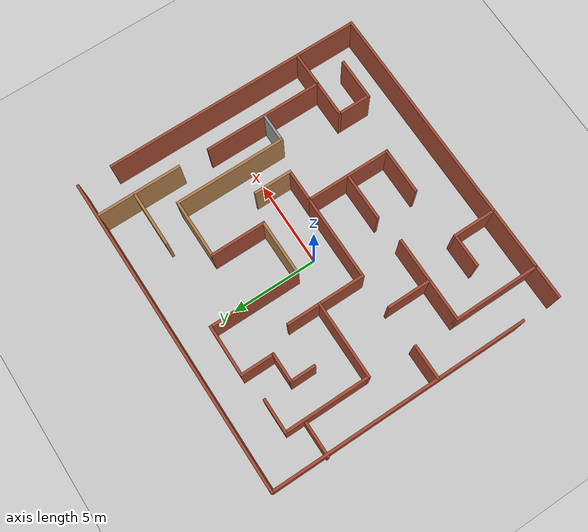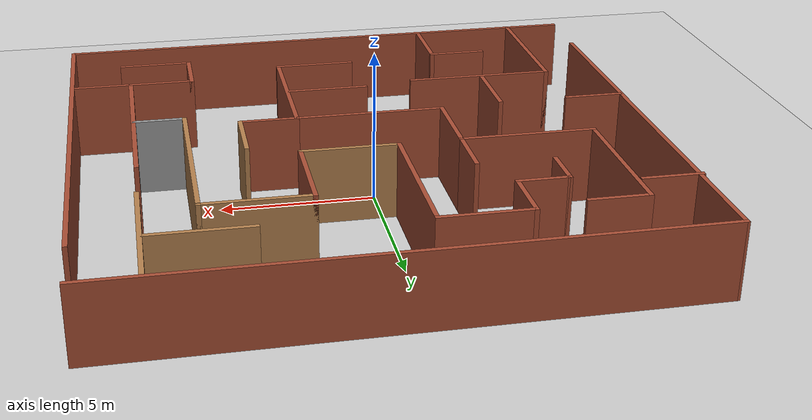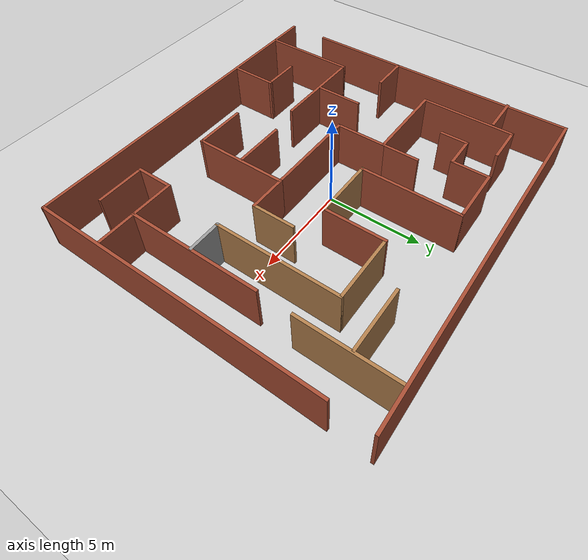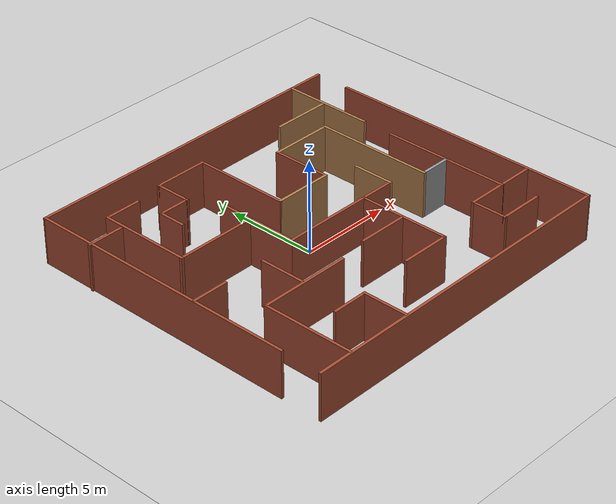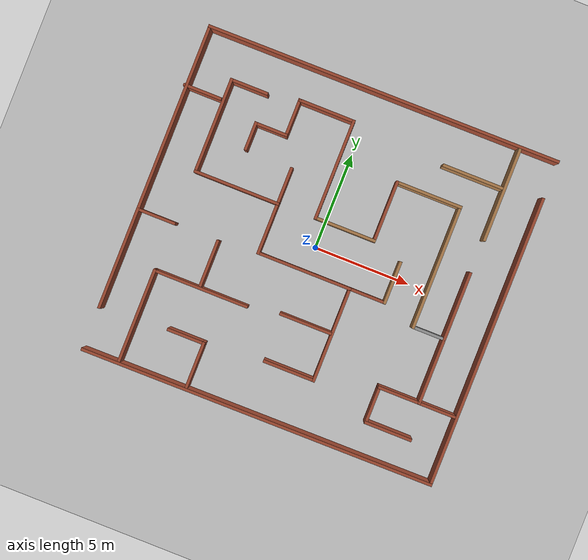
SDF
<sdf version="1.7">
 <world name="default">
  <light name="sun" type="directional">
   <pose>0 0 10 0 -0 0</pose>
   <diffuse>0.8 0.8 0.8 1</diffuse>
   <specular>0.2 0.2 0.2 1</specular>
   <attenuation>
    <range>1000</range>
    <constant>0.9</constant>
    <linear>0.01</linear>
    <quadratic>0.001</quadratic>
   </attenuation>
   <direction>-0.5 0.1 -0.9</direction>
   <spot><inner_angle>0</inner_angle><outer_angle>0</outer_angle><falloff>0</falloff></spot>
  </light>
  <model name="ground_plane">
   <static>1</static>
   <link name="link">
    <collision name="collision">
     <geometry><plane><normal>0 0 1</normal><size>100 100</size></plane></geometry>
     <surface><friction><ode><mu>100</mu><mu2>50</mu2></ode></friction></surface>
    </collision>
    <visual name="visual">
     <cast_shadows>0</cast_shadows>
     <geometry><plane><normal>0 0 1</normal><size>100 100</size></plane></geometry>
     <material>
      <script><uri>file://media/materials/scripts/gazebo.material</uri><name>Gazebo/Grey</name></script>
     </material>
    </visual>
   </link>
  </model>
  <gravity>0 0 -9.8</gravity>
  <magnetic_field>6e-06 2.3e-05 -4.2e-05</magnetic_field>
  <atmosphere type="adiabatic"/>
  <physics type="ode">
   <max_step_size>0.001</max_step_size>
   <real_time_factor>1</real_time_factor>
   <real_time_update_rate>1000</real_time_update_rate>
  </physics>
  <scene><ambient>0.4 0.4 0.4 1</ambient><background>0.7 0.7 0.7 1</background><shadows>1</shadows></scene>
  <audio><device>default</device></audio>
  <spherical_coordinates>
   <surface_model>EARTH_WGS84</surface_model>
   <latitude_deg>0</latitude_deg>
   <longitude_deg>0</longitude_deg>
   <elevation>0</elevation>
   <heading_deg>0</heading_deg>
  </spherical_coordinates>
  <model name="Maze_1">
   <pose>0.318271 -0.269888 0 0 -0 0</pose>
   <link name="Wall_101">
    <collision name="Wall_101_Collision">
     <geometry><box><size>5.25 0.15 2.5</size></box></geometry>
     <pose>0 0 1.25 0 -0 0</pose>
    </collision>
    <visual name="Wall_101_Visual">
     <pose>0 0 1.25 0 -0 0</pose>
     <geometry><box><size>5.25 0.15 2.5</size></box></geometry>
     <material>
      <script><uri>file://media/materials/scripts/gazebo.material</uri><name>Gazebo/Bricks</name></script>
      <ambient>1 1 1 1</ambient>
     </material>
     <meta><layer>0</layer></meta>
    </visual>
    <pose>-0.848398 4.19928 0 0 -0 -1.5708</pose>
   </link>
   <link name="Wall_102">
    <collision name="Wall_102_Collision">
     <geometry><box><size>3.25 0.15 2.5</size></box></geometry>
     <pose>0 0 1.25 0 -0 0</pose>
    </collision>
    <visual name="Wall_102_Visual">
     <pose>0 0 1.25 0 -0 0</pose>
     <geometry><box><size>3.25 0.15 2.5</size></box></geometry>
     <material>
      <script><uri>file://media/materials/scripts/gazebo.material</uri><name>Gazebo/Wood</name></script>
      <ambient>1 1 1 1</ambient>
     </material>
     <meta><layer>0</layer></meta>
    </visual>
    <pose>0.701602 1.64928 0 0 -0 0</pose>
   </link>
   <link name="Wall_103">
    <collision name="Wall_103_Collision">
     <geometry><box><size>3.25 0.15 2.5</size></box></geometry>
     <pose>0 0 1.25 0 -0 0</pose>
    </collision>
    <visual name="Wall_103_Visual">
     <pose>0 0 1.25 0 -0 0</pose>
     <geometry><box><size>3.25 0.15 2.5</size></box></geometry>
     <material>
      <script><uri>file://media/materials/scripts/gazebo.material</uri><name>Gazebo/Bricks</name></script>
      <ambient>1 1 1 1</ambient>
     </material>
     <meta><layer>0</layer></meta>
    </visual>
    <pose>2.2516 3.19928 0 0 -0 1.5708</pose>
   </link>
   <link name="Wall_104">
    <collision name="Wall_104_Collision">
     <geometry><box><size>3.5 0.15 2.5</size></box></geometry>
     <pose>0 0 1.25 0 -0 0</pose>
    </collision>
    <visual name="Wall_104_Visual">
     <pose>0 0 1.25 0 -0 0</pose>
     <geometry><box><size>3.5 0.15 2.5</size></box></geometry>
     <material>
      <script><uri>file://media/materials/scripts/gazebo.material</uri><name>Gazebo/Wood</name></script>
      <ambient>1 1 1 1</ambient>
     </material>
     <meta><layer>0</layer></meta>
    </visual>
    <pose>3.9266 4.74928 0 0 -0 0</pose>
   </link>
   <link name="Wall_105">
    <collision name="Wall_105_Collision">
     <geometry><box><size>6.5 0.15 2.5</size></box></geometry>
     <pose>0 0 1.25 0 -0 0</pose>
    </collision>
    <visual name="Wall_105_Visual">
     <pose>0 0 1.25 0 -0 0</pose>
     <geometry><box><size>6.5 0.15 2.5</size></box></geometry>
     <material>
      <script><uri>file://media/materials/scripts/gazebo.material</uri><name>Gazebo/Wood</name></script>
      <ambient>1 1 1 1</ambient>
     </material>
     <meta><layer>0</layer></meta>
    </visual>
    <pose>5.6016 1.57428 0 0 -0 -1.5708</pose>
   </link>
   <link name="Wall_106">
    <collision name="Wall_106_Collision">
     <geometry><box><size>1.75 0.15 2.5</size></box></geometry>
     <pose>0 0 1.25 0 -0 0</pose>
    </collision>
    <visual name="Wall_106_Visual">
     <pose>0 0 1.25 0 -0 0</pose>
     <geometry><box><size>1.75 0.15 2.5</size></box></geometry>
     <material>
      <script><uri>file://media/materials/scripts/gazebo.material</uri><name>Gazebo/Grey</name></script>
      <ambient>1 1 1 1</ambient>
     </material>
     <meta><layer>0</layer></meta>
    </visual>
    <pose>6.4016 -1.60072 0 0 -0 0</pose>
   </link>
   <link name="Wall_108">
    <collision name="Wall_108_Collision">
     <geometry><box><size>2 0.15 2.5</size></box></geometry>
     <pose>0 0 1.25 0 -0 0</pose>
    </collision>
    <visual name="Wall_108_Visual">
     <pose>0 0 1.25 0 -0 0</pose>
     <geometry><box><size>2 0.15 2.5</size></box></geometry>
     <material>
      <script><uri>file://media/materials/scripts/gazebo.material</uri><name>Gazebo/Bricks</name></script>
      <ambient>1 1 1 1</ambient>
     </material>
     <meta><layer>0</layer></meta>
    </visual>
    <pose>2.92695 -0.995875 0 0 -0 0</pose>
   </link>
   <link name="Wall_109">
    <collision name="Wall_109_Collision">
     <geometry><box><size>2.25 0.15 2.5</size></box></geometry>
     <pose>0 0 1.25 0 -0 0</pose>
    </collision>
    <visual name="Wall_109_Visual">
     <pose>0 0 1.25 0 -0 0</pose>
     <geometry><box><size>2.25 0.15 2.5</size></box></geometry>
     <material>
      <script><uri>file://media/materials/scripts/gazebo.material</uri><name>Gazebo/Wood</name></script>
      <ambient>1 1 1 1</ambient>
     </material>
     <meta><layer>0</layer></meta>
    </visual>
    <pose>3.85195 0.054125 0 0 -0 1.5708</pose>
   </link>
   <link name="Wall_111">
    <collision name="Wall_111_Collision">
     <geometry><box><size>2.75 0.15 2.5</size></box></geometry>
     <pose>0 0 1.25 0 -0 0</pose>
    </collision>
    <visual name="Wall_111_Visual">
     <pose>0 0 1.25 0 -0 0</pose>
     <geometry><box><size>2.75 0.15 2.5</size></box></geometry>
     <material>
      <script><uri>file://media/materials/scripts/gazebo.material</uri><name>Gazebo/Bricks</name></script>
      <ambient>1 1 1 1</ambient>
     </material>
     <meta><layer>0</layer></meta>
    </visual>
    <pose>0.597626 -3.38697 0 0 -0 3.14159</pose>
   </link>
   <link name="Wall_14">
    <collision name="Wall_14_Collision">
     <geometry><box><size>18.5406 0.15 2.5</size></box></geometry>
     <pose>0 0 1.25 0 -0 0</pose>
    </collision>
    <visual name="Wall_14_Visual">
     <pose>0 0 1.25 0 -0 0</pose>
     <geometry><box><size>18.5406 0.15 2.5</size></box></geometry>
     <material>
      <script><uri>file://media/materials/scripts/gazebo.material</uri><name>Gazebo/Bricks</name></script>
      <ambient>1 1 1 1</ambient>
     </material>
     <meta><layer>0</layer></meta>
    </visual>
    <pose>0.042858 -8.55 0 0 -0 0.0044</pose>
   </link>
   <link name="Wall_16">
    <collision name="Wall_16_Collision">
     <geometry><box><size>18.5406 0.15 2.5</size></box></geometry>
     <pose>0 0 1.25 0 -0 0</pose>
    </collision>
    <visual name="Wall_16_Visual">
     <pose>0 0 1.25 0 -0 0</pose>
     <geometry><box><size>18.5406 0.15 2.5</size></box></geometry>
     <material>
      <script><uri>file://media/materials/scripts/gazebo.material</uri><name>Gazebo/Bricks</name></script>
      <ambient>1 1 1 1</ambient>
     </material>
     <meta><layer>0</layer></meta>
    </visual>
    <pose>0.042858 8.55 0 0 -0 -3.13719</pose>
   </link>
   <link name="Wall_31">
    <collision name="Wall_31_Collision">
     <geometry><box><size>15 0.15 2.5</size></box></geometry>
     <pose>0 0 1.25 0 -0 0</pose>
    </collision>
    <visual name="Wall_31_Visual">
     <pose>0 0 1.25 0 -0 0</pose>
     <geometry><box><size>15 0.15 2.5</size></box></geometry>
     <material>
      <script><uri>file://media/materials/scripts/gazebo.material</uri><name>Gazebo/Bricks</name></script>
      <ambient>1 1 1 1</ambient>
     </material>
     <meta><layer>0</layer></meta>
    </visual>
    <pose>-9.15237 1.08455 0 0 -0 -1.5708</pose>
   </link>
   <link name="Wall_33">
    <collision name="Wall_33_Collision">
     <geometry><box><size>15.25 0.15 2.5</size></box></geometry>
     <pose>0 0 1.25 0 -0 0</pose>
    </collision>
    <visual name="Wall_33_Visual">
     <pose>0 0 1.25 0 -0 0</pose>
     <geometry><box><size>15.25 0.15 2.5</size></box></geometry>
     <material>
      <script><uri>file://media/materials/scripts/gazebo.material</uri><name>Gazebo/Bricks</name></script>
      <ambient>1 1 1 1</ambient>
     </material>
     <meta><layer>0</layer></meta>
    </visual>
    <pose>9.23809 -0.959544 0 0 -0 1.5708</pose>
   </link>
   <link name="Wall_37">
    <collision name="Wall_37_Collision">
     <geometry><box><size>5 0.15 2.5</size></box></geometry>
     <pose>0 0 1.25 0 -0 0</pose>
    </collision>
    <visual name="Wall_37_Visual">
     <pose>0 0 1.25 0 -0 0</pose>
     <geometry><box><size>5 0.15 2.5</size></box></geometry>
     <material>
      <script><uri>file://media/materials/scripts/gazebo.material</uri><name>Gazebo/Wood</name></script>
      <ambient>1 1 1 1</ambient>
     </material>
     <meta><layer>0</layer></meta>
    </visual>
    <pose>7.28523 6.12455 0 0 -0 -1.5708</pose>
   </link>
   <link name="Wall_40">
    <collision name="Wall_40_Collision">
     <geometry><box><size>7 0.15 2.5</size></box></geometry>
     <pose>0 0 1.25 0 -0 0</pose>
    </collision>
    <visual name="Wall_40_Visual">
     <pose>0 0 1.25 0 -0 0</pose>
     <geometry><box><size>7 0.15 2.5</size></box></geometry>
     <material>
      <script><uri>file://media/materials/scripts/gazebo.material</uri><name>Gazebo/Bricks</name></script>
      <ambient>1 1 1 1</ambient>
     </material>
     <meta><layer>0</layer></meta>
    </visual>
    <pose>7.24478 -1.55062 0 0 -0 -1.5708</pose>
   </link>
   <link name="Wall_41">
    <collision name="Wall_41_Collision">
     <geometry><box><size>2 0.15 2.5</size></box></geometry>
     <pose>0 0 1.25 0 -0 0</pose>
    </collision>
    <visual name="Wall_41_Visual">
     <pose>0 0 1.25 0 -0 0</pose>
     <geometry><box><size>2 0.15 2.5</size></box></geometry>
     <material>
      <script><uri>file://media/materials/scripts/gazebo.material</uri><name>Gazebo/Bricks</name></script>
      <ambient>1 1 1 1</ambient>
     </material>
     <meta><layer>0</layer></meta>
    </visual>
    <pose>8.16978 -4.97562 0 0 -0 0</pose>
   </link>
   <link name="Wall_43">
    <collision name="Wall_43_Collision">
     <geometry><box><size>2.25 0.15 2.5</size></box></geometry>
     <pose>0 0 1.25 0 -0 0</pose>
    </collision>
    <visual name="Wall_43_Visual">
     <pose>0 0 1.25 0 -0 0</pose>
     <geometry><box><size>2.25 0.15 2.5</size></box></geometry>
     <material>
      <script><uri>file://media/materials/scripts/gazebo.material</uri><name>Gazebo/Bricks</name></script>
      <ambient>1 1 1 1</ambient>
     </material>
     <meta><layer>0</layer></meta>
    </visual>
    <pose>6.19478 -4.97562 0 0 -0 3.14159</pose>
   </link>
   <link name="Wall_44">
    <collision name="Wall_44_Collision">
     <geometry><box><size>2 0.15 2.5</size></box></geometry>
     <pose>0 0 1.25 0 -0 0</pose>
    </collision>
    <visual name="Wall_44_Visual">
     <pose>0 0 1.25 0 -0 0</pose>
     <geometry><box><size>2 0.15 2.5</size></box></geometry>
     <material>
      <script><uri>file://media/materials/scripts/gazebo.material</uri><name>Gazebo/Bricks</name></script>
      <ambient>1 1 1 1</ambient>
     </material>
     <meta><layer>0</layer></meta>
    </visual>
    <pose>5.14478 -5.90062 0 0 -0 -1.5708</pose>
   </link>
   <link name="Wall_45">
    <collision name="Wall_45_Collision">
     <geometry><box><size>2.5 0.15 2.5</size></box></geometry>
     <pose>0 0 1.25 0 -0 0</pose>
    </collision>
    <visual name="Wall_45_Visual">
     <pose>0 0 1.25 0 -0 0</pose>
     <geometry><box><size>2.5 0.15 2.5</size></box></geometry>
     <material>
      <script><uri>file://media/materials/scripts/gazebo.material</uri><name>Gazebo/Bricks</name></script>
      <ambient>1 1 1 1</ambient>
     </material>
     <meta><layer>0</layer></meta>
    </visual>
    <pose>6.31978 -6.82562 0 0 -0 0</pose>
   </link>
   <link name="Wall_47">
    <collision name="Wall_47_Collision">
     <geometry><box><size>3.25 0.15 2.5</size></box></geometry>
     <pose>0 0 1.25 0 -0 0</pose>
    </collision>
    <visual name="Wall_47_Visual">
     <pose>0 0 1.25 0 -0 0</pose>
     <geometry><box><size>3.25 0.15 2.5</size></box></geometry>
     <material>
      <script><uri>file://media/materials/scripts/gazebo.material</uri><name>Gazebo/Wood</name></script>
      <ambient>1 1 1 1</ambient>
     </material>
     <meta><layer>0</layer></meta>
    </visual>
    <pose>5.65432 6.36494 0 0 -0 3.14159</pose>
   </link>
   <link name="Wall_54">
    <collision name="Wall_54_Collision">
     <geometry><box><size>5 0.15 2.5</size></box></geometry>
     <pose>0 0 1.25 0 -0 0</pose>
    </collision>
    <visual name="Wall_54_Visual">
     <pose>0 0 1.25 0 -0 0</pose>
     <geometry><box><size>5 0.15 2.5</size></box></geometry>
     <material>
      <script><uri>file://media/materials/scripts/gazebo.material</uri><name>Gazebo/Bricks</name></script>
      <ambient>1 1 1 1</ambient>
     </material>
     <meta><layer>0</layer></meta>
    </visual>
    <pose>-7.27877 -6.09771 0 0 -0 1.5708</pose>
   </link>
   <link name="Wall_56">
    <collision name="Wall_56_Collision">
     <geometry><box><size>5 0.15 2.5</size></box></geometry>
     <pose>0 0 1.25 0 -0 0</pose>
    </collision>
    <visual name="Wall_56_Visual">
     <pose>0 0 1.25 0 -0 0</pose>
     <geometry><box><size>5 0.15 2.5</size></box></geometry>
     <material>
      <script><uri>file://media/materials/scripts/gazebo.material</uri><name>Gazebo/Bricks</name></script>
      <ambient>1 1 1 1</ambient>
     </material>
     <meta><layer>0</layer></meta>
    </visual>
    <pose>-4.85377 -3.67271 0 0 -0 0</pose>
   </link>
   <link name="Wall_63">
    <collision name="Wall_63_Collision">
     <geometry><box><size>2.5 0.15 2.5</size></box></geometry>
     <pose>0 0 1.25 0 -0 0</pose>
    </collision>
    <visual name="Wall_63_Visual">
     <pose>0 0 1.25 0 -0 0</pose>
     <geometry><box><size>2.5 0.15 2.5</size></box></geometry>
     <material>
      <script><uri>file://media/materials/scripts/gazebo.material</uri><name>Gazebo/Bricks</name></script>
      <ambient>1 1 1 1</ambient>
     </material>
     <meta><layer>0</layer></meta>
    </visual>
    <pose>-3.71535 -7.30685 0 0 -0 1.5708</pose>
   </link>
   <link name="Wall_64">
    <collision name="Wall_64_Collision">
     <geometry><box><size>2 0.15 2.5</size></box></geometry>
     <pose>0 0 1.25 0 -0 0</pose>
    </collision>
    <visual name="Wall_64_Visual">
     <pose>0 0 1.25 0 -0 0</pose>
     <geometry><box><size>2 0.15 2.5</size></box></geometry>
     <material>
      <script><uri>file://media/materials/scripts/gazebo.material</uri><name>Gazebo/Bricks</name></script>
      <ambient>1 1 1 1</ambient>
     </material>
     <meta><layer>0</layer></meta>
    </visual>
    <pose>-4.64035 -6.13185 0 0 -0 3.14159</pose>
   </link>
   <link name="Wall_66">
    <collision name="Wall_66_Collision">
     <geometry><box><size>2 0.15 2.5</size></box></geometry>
     <pose>0 0 1.25 0 -0 0</pose>
    </collision>
    <visual name="Wall_66_Visual">
     <pose>0 0 1.25 0 -0 0</pose>
     <geometry><box><size>2 0.15 2.5</size></box></geometry>
     <material>
      <script><uri>file://media/materials/scripts/gazebo.material</uri><name>Gazebo/Bricks</name></script>
      <ambient>1 1 1 1</ambient>
     </material>
     <meta><layer>0</layer></meta>
    </visual>
    <pose>-8.1727 -1.16467 0 0 -0 0</pose>
   </link>
   <link name="Wall_70">
    <collision name="Wall_70_Collision">
     <geometry><box><size>2 0.15 2.5</size></box></geometry>
     <pose>0 0 1.25 0 -0 0</pose>
    </collision>
    <visual name="Wall_70_Visual">
     <pose>0 0 1.25 0 -0 0</pose>
     <geometry><box><size>2 0.15 2.5</size></box></geometry>
     <material>
      <script><uri>file://media/materials/scripts/gazebo.material</uri><name>Gazebo/Bricks</name></script>
      <ambient>1 1 1 1</ambient>
     </material>
     <meta><layer>0</layer></meta>
    </visual>
    <pose>-8.31342 5.37858 0 0 -0 0</pose>
   </link>
   <link name="Wall_72">
    <collision name="Wall_72_Collision">
     <geometry><box><size>4.5 0.15 2.5</size></box></geometry>
     <pose>0 0 1.25 0 -0 0</pose>
    </collision>
    <visual name="Wall_72_Visual">
     <pose>0 0 1.25 0 -0 0</pose>
     <geometry><box><size>4.5 0.15 2.5</size></box></geometry>
     <material>
      <script><uri>file://media/materials/scripts/gazebo.material</uri><name>Gazebo/Bricks</name></script>
      <ambient>1 1 1 1</ambient>
     </material>
     <meta><layer>0</layer></meta>
    </visual>
    <pose>-5.02305 1.60413 0 0 -0 0</pose>
   </link>
   <link name="Wall_74">
    <collision name="Wall_74_Collision">
     <geometry><box><size>2.5 0.15 2.5</size></box></geometry>
     <pose>0 0 1.25 0 -0 0</pose>
    </collision>
    <visual name="Wall_74_Visual">
     <pose>0 0 1.25 0 -0 0</pose>
     <geometry><box><size>2.5 0.15 2.5</size></box></geometry>
     <material>
      <script><uri>file://media/materials/scripts/gazebo.material</uri><name>Gazebo/Bricks</name></script>
      <ambient>1 1 1 1</ambient>
     </material>
     <meta><layer>0</layer></meta>
    </visual>
    <pose>-4.91143 -2.38183 0 0 -0 1.5708</pose>
   </link>
   <link name="Wall_76">
    <collision name="Wall_76_Collision">
     <geometry><box><size>2 0.15 2.5</size></box></geometry>
     <pose>0 0 1.25 0 -0 0</pose>
    </collision>
    <visual name="Wall_76_Visual">
     <pose>0 0 1.25 0 -0 0</pose>
     <geometry><box><size>2 0.15 2.5</size></box></geometry>
     <material>
      <script><uri>file://media/materials/scripts/gazebo.material</uri><name>Gazebo/Bricks</name></script>
      <ambient>1 1 1 1</ambient>
     </material>
     <meta><layer>0</layer></meta>
    </visual>
    <pose>-2.84805 2.52913 0 0 -0 1.5708</pose>
   </link>
   <link name="Wall_78">
    <collision name="Wall_78_Collision">
     <geometry><box><size>2.75 0.15 2.5</size></box></geometry>
     <pose>0 0 1.25 0 -0 0</pose>
    </collision>
    <visual name="Wall_78_Visual">
     <pose>0 0 1.25 0 -0 0</pose>
     <geometry><box><size>2.75 0.15 2.5</size></box></geometry>
     <material>
      <script><uri>file://media/materials/scripts/gazebo.material</uri><name>Gazebo/Bricks</name></script>
      <ambient>1 1 1 1</ambient>
     </material>
     <meta><layer>0</layer></meta>
    </visual>
    <pose>-2.84805 0.304125 0 0 -0 -1.5708</pose>
   </link>
   <link name="Wall_80">
    <collision name="Wall_80_Collision">
     <geometry><box><size>5 0.15 2.5</size></box></geometry>
     <pose>0 0 1.25 0 -0 0</pose>
    </collision>
    <visual name="Wall_80_Visual">
     <pose>0 0 1.25 0 -0 0</pose>
     <geometry><box><size>5 0.15 2.5</size></box></geometry>
     <material>
      <script><uri>file://media/materials/scripts/gazebo.material</uri><name>Gazebo/Bricks</name></script>
      <ambient>1 1 1 1</ambient>
     </material>
     <meta><layer>0</layer></meta>
    </visual>
    <pose>-0.423051 -0.995875 0 0 -0 0</pose>
   </link>
   <link name="Wall_82">
    <collision name="Wall_82_Collision">
     <geometry><box><size>5 0.15 2.5</size></box></geometry>
     <pose>0 0 1.25 0 -0 0</pose>
    </collision>
    <visual name="Wall_82_Visual">
     <pose>0 0 1.25 0 -0 0</pose>
     <geometry><box><size>5 0.15 2.5</size></box></geometry>
     <material>
      <script><uri>file://media/materials/scripts/gazebo.material</uri><name>Gazebo/Bricks</name></script>
      <ambient>1 1 1 1</ambient>
     </material>
     <meta><layer>0</layer></meta>
    </visual>
    <pose>2.00195 -3.42088 0 0 -0 -1.5708</pose>
   </link>
   <link name="Wall_83">
    <collision name="Wall_83_Collision">
     <geometry><box><size>2.75 0.15 2.5</size></box></geometry>
     <pose>0 0 1.25 0 -0 0</pose>
    </collision>
    <visual name="Wall_83_Visual">
     <pose>0 0 1.25 0 -0 0</pose>
     <geometry><box><size>2.75 0.15 2.5</size></box></geometry>
     <material>
      <script><uri>file://media/materials/scripts/gazebo.material</uri><name>Gazebo/Bricks</name></script>
      <ambient>1 1 1 1</ambient>
     </material>
     <meta><layer>0</layer></meta>
    </visual>
    <pose>0.701949 -5.84588 0 0 -0 3.14159</pose>
   </link>
   <link name="Wall_91">
    <collision name="Wall_91_Collision">
     <geometry><box><size>5 0.15 2.5</size></box></geometry>
     <pose>0 0 1.25 0 -0 0</pose>
    </collision>
    <visual name="Wall_91_Visual">
     <pose>0 0 1.25 0 -0 0</pose>
     <geometry><box><size>5 0.15 2.5</size></box></geometry>
     <material>
      <script><uri>file://media/materials/scripts/gazebo.material</uri><name>Gazebo/Bricks</name></script>
      <ambient>1 1 1 1</ambient>
     </material>
     <meta><layer>0</layer></meta>
    </visual>
    <pose>-7.19805 4.02912 0 0 -0 1.5708</pose>
   </link>
   <link name="Wall_93">
    <collision name="Wall_93_Collision">
     <geometry><box><size>2 0.15 2.5</size></box></geometry>
     <pose>0 0 1.25 0 -0 0</pose>
    </collision>
    <visual name="Wall_93_Visual">
     <pose>0 0 1.25 0 -0 0</pose>
     <geometry><box><size>2 0.15 2.5</size></box></geometry>
     <material>
      <script><uri>file://media/materials/scripts/gazebo.material</uri><name>Gazebo/Bricks</name></script>
      <ambient>1 1 1 1</ambient>
     </material>
     <meta><layer>0</layer></meta>
    </visual>
    <pose>-6.27305 6.45413 0 0 -0 0</pose>
   </link>
   <link name="Wall_95">
    <collision name="Wall_95_Collision">
     <geometry><box><size>1.5 0.15 2.5</size></box></geometry>
     <pose>0 0 1.25 0 -0 0</pose>
    </collision>
    <visual name="Wall_95_Visual">
     <pose>0 0 1.25 0 -0 0</pose>
     <geometry><box><size>1.5 0.15 2.5</size></box></geometry>
     <material>
      <script><uri>file://media/materials/scripts/gazebo.material</uri><name>Gazebo/Bricks</name></script>
      <ambient>1 1 1 1</ambient>
     </material>
     <meta><layer>0</layer></meta>
    </visual>
    <pose>-5.2984 4.22428 0 0 -0 1.5708</pose>
   </link>
   <link name="Wall_96">
    <collision name="Wall_96_Collision">
     <geometry><box><size>1.75 0.15 2.5</size></box></geometry>
     <pose>0 0 1.25 0 -0 0</pose>
    </collision>
    <visual name="Wall_96_Visual">
     <pose>0 0 1.25 0 -0 0</pose>
     <geometry><box><size>1.75 0.15 2.5</size></box></geometry>
     <material>
      <script><uri>file://media/materials/scripts/gazebo.material</uri><name>Gazebo/Bricks</name></script>
      <ambient>1 1 1 1</ambient>
     </material>
     <meta><layer>0</layer></meta>
    </visual>
    <pose>-4.4984 4.89928 0 0 -0 0</pose>
   </link>
   <link name="Wall_97">
    <collision name="Wall_97_Collision">
     <geometry><box><size>2 0.15 2.5</size></box></geometry>
     <pose>0 0 1.25 0 -0 0</pose>
    </collision>
    <visual name="Wall_97_Visual">
     <pose>0 0 1.25 0 -0 0</pose>
     <geometry><box><size>2 0.15 2.5</size></box></geometry>
     <material>
      <script><uri>file://media/materials/scripts/gazebo.material</uri><name>Gazebo/Bricks</name></script>
      <ambient>1 1 1 1</ambient>
     </material>
     <meta><layer>0</layer></meta>
    </visual>
    <pose>-3.6984 5.82428 0 0 -0 1.5708</pose>
   </link>
   <link name="Wall_98">
    <collision name="Wall_98_Collision">
     <geometry><box><size>3 0.15 2.5</size></box></geometry>
     <pose>0 0 1.25 0 -0 0</pose>
    </collision>
    <visual name="Wall_98_Visual">
     <pose>0 0 1.25 0 -0 0</pose>
     <geometry><box><size>3 0.15 2.5</size></box></geometry>
     <material>
      <script><uri>file://media/materials/scripts/gazebo.material</uri><name>Gazebo/Bricks</name></script>
      <ambient>1 1 1 1</ambient>
     </material>
     <meta><layer>0</layer></meta>
    </visual>
    <pose>-2.2734 6.74928 0 0 -0 0</pose>
   </link>
   <static>1</static>
  </model>
 </world>
</sdf>
